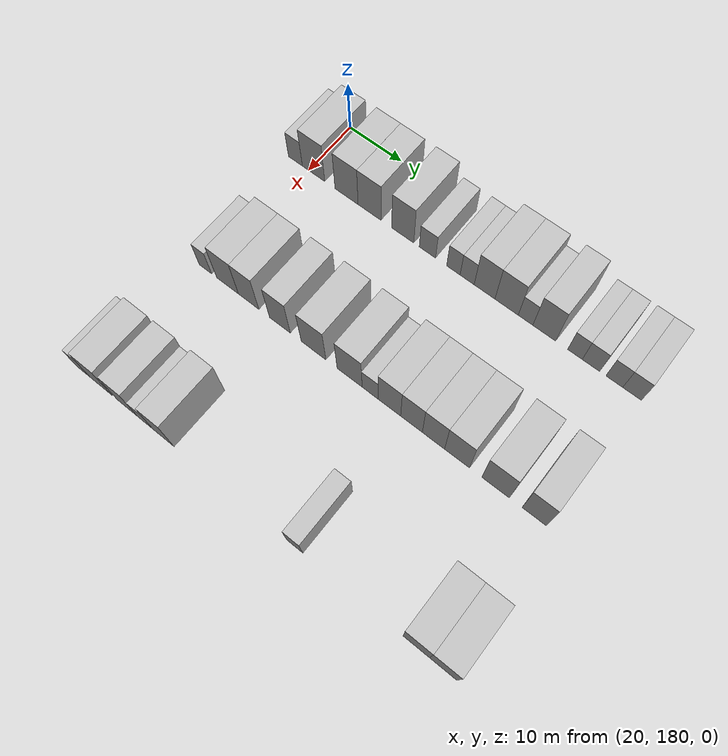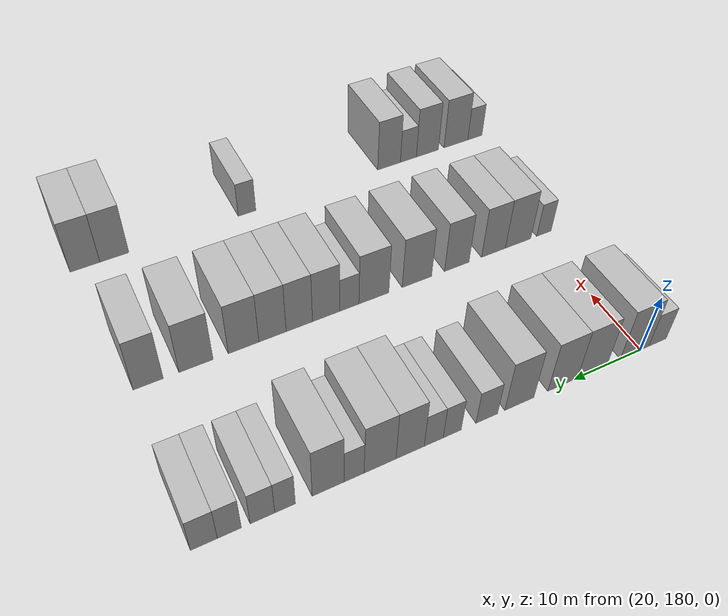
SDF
<sdf version="1.6">
 <world name="default">
  <model name="building_133">
   <static>1</static>
   <pose>25.0000 177.3653 0 0.000000 0.000000 0.000000</pose>
   <link name="link">
    <pose>0 0 3.00 0 0 0</pose>
    <collision name="collision"><geometry><box><size>10.0000 2.7550 6.0000</size></box></geometry></collision>
    <visual name="visual">
     <cast_shadows>0</cast_shadows>
     <geometry><box><size>10.0000 2.7550 6.0000</size></box></geometry>
     <material>
      <script>
       <uri>model://HANNAS_wall/materials/scripts</uri>
       <uri>model://HANNAS_wall/materials/textures</uri>
       <name>vrc/HANNAS_wall</name>
      </script>
     </material>
    </visual>
   </link>
  </model>
  <model name="building_134">
   <static>1</static>
   <pose>25.0000 180.9439 0 0.000000 0.000000 0.000000</pose>
   <link name="link">
    <pose>0 0 4.50 0 0 0</pose>
    <collision name="collision"><geometry><box><size>10.0000 4.4023 9.0000</size></box></geometry></collision>
    <visual name="visual">
     <cast_shadows>0</cast_shadows>
     <geometry><box><size>10.0000 4.4023 9.0000</size></box></geometry>
     <material>
      <script>
       <uri>model://HANNAS_wall/materials/scripts</uri>
       <uri>model://HANNAS_wall/materials/textures</uri>
       <name>vrc/HANNAS_wall</name>
      </script>
     </material>
    </visual>
   </link>
  </model>
  <model name="building_135">
   <static>1</static>
   <pose>25.0000 187.3601 0 0.000000 0.000000 0.000000</pose>
   <link name="link">
    <pose>0 0 4.50 0 0 0</pose>
    <collision name="collision"><geometry><box><size>10.0000 4.4300 9.0000</size></box></geometry></collision>
    <visual name="visual">
     <cast_shadows>0</cast_shadows>
     <geometry><box><size>10.0000 4.4300 9.0000</size></box></geometry>
     <material>
      <script>
       <uri>model://HANNAS_wall/materials/scripts</uri>
       <uri>model://HANNAS_wall/materials/textures</uri>
       <name>vrc/HANNAS_wall</name>
      </script>
     </material>
    </visual>
   </link>
  </model>
  <model name="building_136">
   <static>1</static>
   <pose>25.0000 191.7448 0 0.000000 0.000000 0.000000</pose>
   <link name="link">
    <pose>0 0 4.50 0 0 0</pose>
    <collision name="collision"><geometry><box><size>10.0000 4.3393 9.0000</size></box></geometry></collision>
    <visual name="visual">
     <cast_shadows>0</cast_shadows>
     <geometry><box><size>10.0000 4.3393 9.0000</size></box></geometry>
     <material>
      <script>
       <uri>model://HANNAS_wall/materials/scripts</uri>
       <uri>model://HANNAS_wall/materials/textures</uri>
       <name>vrc/HANNAS_wall</name>
      </script>
     </material>
    </visual>
   </link>
  </model>
  <model name="building_137">
   <static>1</static>
   <pose>25.0000 197.9644 0 0.000000 0.000000 0.000000</pose>
   <link name="link">
    <pose>0 0 4.50 0 0 0</pose>
    <collision name="collision"><geometry><box><size>10.0000 4.0999 9.0000</size></box></geometry></collision>
    <visual name="visual">
     <cast_shadows>0</cast_shadows>
     <geometry><box><size>10.0000 4.0999 9.0000</size></box></geometry>
     <material>
      <script>
       <uri>model://HANNAS_wall/materials/scripts</uri>
       <uri>model://HANNAS_wall/materials/textures</uri>
       <name>vrc/HANNAS_wall</name>
      </script>
     </material>
    </visual>
   </link>
  </model>
  <model name="building_138">
   <static>1</static>
   <pose>25.0000 202.4989 0 0.000000 0.000000 0.000000</pose>
   <link name="link">
    <pose>0 0 3.00 0 0 0</pose>
    <collision name="collision"><geometry><box><size>10.0000 2.9692 6.0000</size></box></geometry></collision>
    <visual name="visual">
     <cast_shadows>0</cast_shadows>
     <geometry><box><size>10.0000 2.9692 6.0000</size></box></geometry>
     <material>
      <script>
       <uri>model://HANNAS_wall/materials/scripts</uri>
       <uri>model://HANNAS_wall/materials/textures</uri>
       <name>vrc/HANNAS_wall</name>
      </script>
     </material>
    </visual>
   </link>
  </model>
  <model name="building_139">
   <static>1</static>
   <pose>25.0000 207.1845 0 0.000000 0.000000 0.000000</pose>
   <link name="link">
    <pose>0 0 3.00 0 0 0</pose>
    <collision name="collision"><geometry><box><size>10.0000 2.4019 6.0000</size></box></geometry></collision>
    <visual name="visual">
     <cast_shadows>0</cast_shadows>
     <geometry><box><size>10.0000 2.4019 6.0000</size></box></geometry>
     <material>
      <script>
       <uri>model://HANNAS_wall/materials/scripts</uri>
       <uri>model://HANNAS_wall/materials/textures</uri>
       <name>vrc/HANNAS_wall</name>
      </script>
     </material>
    </visual>
   </link>
  </model>
  <model name="building_140">
   <static>1</static>
   <pose>25.0000 209.6355 0 0.000000 0.000000 0.000000</pose>
   <link name="link">
    <pose>0 0 3.00 0 0 0</pose>
    <collision name="collision"><geometry><box><size>10.0000 2.5001 6.0000</size></box></geometry></collision>
    <visual name="visual">
     <cast_shadows>0</cast_shadows>
     <geometry><box><size>10.0000 2.5001 6.0000</size></box></geometry>
     <material>
      <script>
       <uri>model://HANNAS_wall/materials/scripts</uri>
       <uri>model://HANNAS_wall/materials/textures</uri>
       <name>vrc/HANNAS_wall</name>
      </script>
     </material>
    </visual>
   </link>
  </model>
  <model name="building_141">
   <static>1</static>
   <pose>25.0000 212.7090 0 0.000000 0.000000 0.000000</pose>
   <link name="link">
    <pose>0 0 4.50 0 0 0</pose>
    <collision name="collision"><geometry><box><size>10.0000 3.6468 9.0000</size></box></geometry></collision>
    <visual name="visual">
     <cast_shadows>0</cast_shadows>
     <geometry><box><size>10.0000 3.6468 9.0000</size></box></geometry>
     <material>
      <script>
       <uri>model://HANNAS_wall/materials/scripts</uri>
       <uri>model://HANNAS_wall/materials/textures</uri>
       <name>vrc/HANNAS_wall</name>
      </script>
     </material>
    </visual>
   </link>
  </model>
  <model name="building_142">
   <static>1</static>
   <pose>25.0000 216.5469 0 0.000000 0.000000 0.000000</pose>
   <link name="link">
    <pose>0 0 4.50 0 0 0</pose>
    <collision name="collision"><geometry><box><size>10.0000 4.0290 9.0000</size></box></geometry></collision>
    <visual name="visual">
     <cast_shadows>0</cast_shadows>
     <geometry><box><size>10.0000 4.0290 9.0000</size></box></geometry>
     <material>
      <script>
       <uri>model://HANNAS_wall/materials/scripts</uri>
       <uri>model://HANNAS_wall/materials/textures</uri>
       <name>vrc/HANNAS_wall</name>
      </script>
     </material>
    </visual>
   </link>
  </model>
  <model name="building_143">
   <static>1</static>
   <pose>25.0000 219.8091 0 0.000000 0.000000 0.000000</pose>
   <link name="link">
    <pose>0 0 3.00 0 0 0</pose>
    <collision name="collision"><geometry><box><size>10.0000 2.4954 6.0000</size></box></geometry></collision>
    <visual name="visual">
     <cast_shadows>0</cast_shadows>
     <geometry><box><size>10.0000 2.4954 6.0000</size></box></geometry>
     <material>
      <script>
       <uri>model://HANNAS_wall/materials/scripts</uri>
       <uri>model://HANNAS_wall/materials/textures</uri>
       <name>vrc/HANNAS_wall</name>
      </script>
     </material>
    </visual>
   </link>
  </model>
  <model name="building_144">
   <static>1</static>
   <pose>25.0000 222.9866 0 0.000000 0.000000 0.000000</pose>
   <link name="link">
    <pose>0 0 4.50 0 0 0</pose>
    <collision name="collision"><geometry><box><size>10.0000 3.8596 9.0000</size></box></geometry></collision>
    <visual name="visual">
     <cast_shadows>0</cast_shadows>
     <geometry><box><size>10.0000 3.8596 9.0000</size></box></geometry>
     <material>
      <script>
       <uri>model://HANNAS_wall/materials/scripts</uri>
       <uri>model://HANNAS_wall/materials/textures</uri>
       <name>vrc/HANNAS_wall</name>
      </script>
     </material>
    </visual>
   </link>
  </model>
  <model name="building_145">
   <static>1</static>
   <pose>25.0000 228.1262 0 0.000000 0.000000 0.000000</pose>
   <link name="link">
    <pose>0 0 3.00 0 0 0</pose>
    <collision name="collision"><geometry><box><size>10.0000 2.4196 6.0000</size></box></geometry></collision>
    <visual name="visual">
     <cast_shadows>0</cast_shadows>
     <geometry><box><size>10.0000 2.4196 6.0000</size></box></geometry>
     <material>
      <script>
       <uri>model://HANNAS_wall/materials/scripts</uri>
       <uri>model://HANNAS_wall/materials/textures</uri>
       <name>vrc/HANNAS_wall</name>
      </script>
     </material>
    </visual>
   </link>
  </model>
  <model name="building_146">
   <static>1</static>
   <pose>25.0000 230.7642 0 0.000000 0.000000 0.000000</pose>
   <link name="link">
    <pose>0 0 3.00 0 0 0</pose>
    <collision name="collision"><geometry><box><size>10.0000 2.8565 6.0000</size></box></geometry></collision>
    <visual name="visual">
     <cast_shadows>0</cast_shadows>
     <geometry><box><size>10.0000 2.8565 6.0000</size></box></geometry>
     <material>
      <script>
       <uri>model://HANNAS_wall/materials/scripts</uri>
       <uri>model://HANNAS_wall/materials/textures</uri>
       <name>vrc/HANNAS_wall</name>
      </script>
     </material>
    </visual>
   </link>
  </model>
  <model name="building_147">
   <static>1</static>
   <pose>25.0000 234.5485 0 0.000000 0.000000 0.000000</pose>
   <link name="link">
    <pose>0 0 3.00 0 0 0</pose>
    <collision name="collision"><geometry><box><size>10.0000 2.7121 6.0000</size></box></geometry></collision>
    <visual name="visual">
     <cast_shadows>0</cast_shadows>
     <geometry><box><size>10.0000 2.7121 6.0000</size></box></geometry>
     <material>
      <script>
       <uri>model://HANNAS_wall/materials/scripts</uri>
       <uri>model://HANNAS_wall/materials/textures</uri>
       <name>vrc/HANNAS_wall</name>
      </script>
     </material>
    </visual>
   </link>
  </model>
  <model name="building_148">
   <static>1</static>
   <pose>25.0000 237.4010 0 0.000000 0.000000 0.000000</pose>
   <link name="link">
    <pose>0 0 3.00 0 0 0</pose>
    <collision name="collision"><geometry><box><size>10.0000 2.9927 6.0000</size></box></geometry></collision>
    <visual name="visual">
     <cast_shadows>0</cast_shadows>
     <geometry><box><size>10.0000 2.9927 6.0000</size></box></geometry>
     <material>
      <script>
       <uri>model://HANNAS_wall/materials/scripts</uri>
       <uri>model://HANNAS_wall/materials/textures</uri>
       <name>vrc/HANNAS_wall</name>
      </script>
     </material>
    </visual>
   </link>
  </model>
  <model name="building_318">
   <static>1</static>
   <pose>47.0000 179.0964 0 0.000000 0.000000 0.000000</pose>
   <link name="link">
    <pose>0 0 3.00 0 0 0</pose>
    <collision name="collision"><geometry><box><size>10.0000 2.4077 6.0000</size></box></geometry></collision>
    <visual name="visual">
     <cast_shadows>0</cast_shadows>
     <geometry><box><size>10.0000 2.4077 6.0000</size></box></geometry>
     <material>
      <script>
       <uri>model://HANNAS_wall/materials/scripts</uri>
       <uri>model://HANNAS_wall/materials/textures</uri>
       <name>vrc/HANNAS_wall</name>
      </script>
     </material>
    </visual>
   </link>
  </model>
  <model name="building_319">
   <static>1</static>
   <pose>47.0000 183.3885 0 0.000000 0.000000 0.000000</pose>
   <link name="link">
    <pose>0 0 4.50 0 0 0</pose>
    <collision name="collision"><geometry><box><size>10.0000 4.1765 9.0000</size></box></geometry></collision>
    <visual name="visual">
     <cast_shadows>0</cast_shadows>
     <geometry><box><size>10.0000 4.1765 9.0000</size></box></geometry>
     <material>
      <script>
       <uri>model://HANNAS_wall/materials/scripts</uri>
       <uri>model://HANNAS_wall/materials/textures</uri>
       <name>vrc/HANNAS_wall</name>
      </script>
     </material>
    </visual>
   </link>
  </model>
  <model name="building_320">
   <static>1</static>
   <pose>47.0000 187.4040 0 0.000000 0.000000 0.000000</pose>
   <link name="link">
    <pose>0 0 4.50 0 0 0</pose>
    <collision name="collision"><geometry><box><size>10.0000 3.8545 9.0000</size></box></geometry></collision>
    <visual name="visual">
     <cast_shadows>0</cast_shadows>
     <geometry><box><size>10.0000 3.8545 9.0000</size></box></geometry>
     <material>
      <script>
       <uri>model://HANNAS_wall/materials/scripts</uri>
       <uri>model://HANNAS_wall/materials/textures</uri>
       <name>vrc/HANNAS_wall</name>
      </script>
     </material>
    </visual>
   </link>
  </model>
  <model name="building_321">
   <static>1</static>
   <pose>47.0000 193.2502 0 0.000000 0.000000 0.000000</pose>
   <link name="link">
    <pose>0 0 4.50 0 0 0</pose>
    <collision name="collision"><geometry><box><size>10.0000 3.8380 9.0000</size></box></geometry></collision>
    <visual name="visual">
     <cast_shadows>0</cast_shadows>
     <geometry><box><size>10.0000 3.8380 9.0000</size></box></geometry>
     <material>
      <script>
       <uri>model://HANNAS_wall/materials/scripts</uri>
       <uri>model://HANNAS_wall/materials/textures</uri>
       <name>vrc/HANNAS_wall</name>
      </script>
     </material>
    </visual>
   </link>
  </model>
  <model name="building_322">
   <static>1</static>
   <pose>47.0000 199.4006 0 0.000000 0.000000 0.000000</pose>
   <link name="link">
    <pose>0 0 4.50 0 0 0</pose>
    <collision name="collision"><geometry><box><size>10.0000 4.4628 9.0000</size></box></geometry></collision>
    <visual name="visual">
     <cast_shadows>0</cast_shadows>
     <geometry><box><size>10.0000 4.4628 9.0000</size></box></geometry>
     <material>
      <script>
       <uri>model://HANNAS_wall/materials/scripts</uri>
       <uri>model://HANNAS_wall/materials/textures</uri>
       <name>vrc/HANNAS_wall</name>
      </script>
     </material>
    </visual>
   </link>
  </model>
  <model name="building_323">
   <static>1</static>
   <pose>47.0000 205.8380 0 0.000000 0.000000 0.000000</pose>
   <link name="link">
    <pose>0 0 4.50 0 0 0</pose>
    <collision name="collision"><geometry><box><size>10.0000 4.4119 9.0000</size></box></geometry></collision>
    <visual name="visual">
     <cast_shadows>0</cast_shadows>
     <geometry><box><size>10.0000 4.4119 9.0000</size></box></geometry>
     <material>
      <script>
       <uri>model://HANNAS_wall/materials/scripts</uri>
       <uri>model://HANNAS_wall/materials/textures</uri>
       <name>vrc/HANNAS_wall</name>
      </script>
     </material>
    </visual>
   </link>
  </model>
  <model name="building_324">
   <static>1</static>
   <pose>47.0000 209.4214 0 0.000000 0.000000 0.000000</pose>
   <link name="link">
    <pose>0 0 3.00 0 0 0</pose>
    <collision name="collision"><geometry><box><size>10.0000 2.7551 6.0000</size></box></geometry></collision>
    <visual name="visual">
     <cast_shadows>0</cast_shadows>
     <geometry><box><size>10.0000 2.7551 6.0000</size></box></geometry>
     <material>
      <script>
       <uri>model://HANNAS_wall/materials/scripts</uri>
       <uri>model://HANNAS_wall/materials/textures</uri>
       <name>vrc/HANNAS_wall</name>
      </script>
     </material>
    </visual>
   </link>
  </model>
  <model name="building_325">
   <static>1</static>
   <pose>47.0000 212.7383 0 0.000000 0.000000 0.000000</pose>
   <link name="link">
    <pose>0 0 4.50 0 0 0</pose>
    <collision name="collision"><geometry><box><size>10.0000 3.8786 9.0000</size></box></geometry></collision>
    <visual name="visual">
     <cast_shadows>0</cast_shadows>
     <geometry><box><size>10.0000 3.8786 9.0000</size></box></geometry>
     <material>
      <script>
       <uri>model://HANNAS_wall/materials/scripts</uri>
       <uri>model://HANNAS_wall/materials/textures</uri>
       <name>vrc/HANNAS_wall</name>
      </script>
     </material>
    </visual>
   </link>
  </model>
  <model name="building_326">
   <static>1</static>
   <pose>47.0000 216.5075 0 0.000000 0.000000 0.000000</pose>
   <link name="link">
    <pose>0 0 4.50 0 0 0</pose>
    <collision name="collision"><geometry><box><size>10.0000 3.6599 9.0000</size></box></geometry></collision>
    <visual name="visual">
     <cast_shadows>0</cast_shadows>
     <geometry><box><size>10.0000 3.6599 9.0000</size></box></geometry>
     <material>
      <script>
       <uri>model://HANNAS_wall/materials/scripts</uri>
       <uri>model://HANNAS_wall/materials/textures</uri>
       <name>vrc/HANNAS_wall</name>
      </script>
     </material>
    </visual>
   </link>
  </model>
  <model name="building_327">
   <static>1</static>
   <pose>47.0000 220.1936 0 0.000000 0.000000 0.000000</pose>
   <link name="link">
    <pose>0 0 4.50 0 0 0</pose>
    <collision name="collision"><geometry><box><size>10.0000 3.7123 9.0000</size></box></geometry></collision>
    <visual name="visual">
     <cast_shadows>0</cast_shadows>
     <geometry><box><size>10.0000 3.7123 9.0000</size></box></geometry>
     <material>
      <script>
       <uri>model://HANNAS_wall/materials/scripts</uri>
       <uri>model://HANNAS_wall/materials/textures</uri>
       <name>vrc/HANNAS_wall</name>
      </script>
     </material>
    </visual>
   </link>
  </model>
  <model name="building_328">
   <static>1</static>
   <pose>47.0000 224.0951 0 0.000000 0.000000 0.000000</pose>
   <link name="link">
    <pose>0 0 4.50 0 0 0</pose>
    <collision name="collision"><geometry><box><size>10.0000 4.0907 9.0000</size></box></geometry></collision>
    <visual name="visual">
     <cast_shadows>0</cast_shadows>
     <geometry><box><size>10.0000 4.0907 9.0000</size></box></geometry>
     <material>
      <script>
       <uri>model://HANNAS_wall/materials/scripts</uri>
       <uri>model://HANNAS_wall/materials/textures</uri>
       <name>vrc/HANNAS_wall</name>
      </script>
     </material>
    </visual>
   </link>
  </model>
  <model name="building_329">
   <static>1</static>
   <pose>47.0000 230.3417 0 0.000000 0.000000 0.000000</pose>
   <link name="link">
    <pose>0 0 4.50 0 0 0</pose>
    <collision name="collision"><geometry><box><size>10.0000 4.4025 9.0000</size></box></geometry></collision>
    <visual name="visual">
     <cast_shadows>0</cast_shadows>
     <geometry><box><size>10.0000 4.4025 9.0000</size></box></geometry>
     <material>
      <script>
       <uri>model://HANNAS_wall/materials/scripts</uri>
       <uri>model://HANNAS_wall/materials/textures</uri>
       <name>vrc/HANNAS_wall</name>
      </script>
     </material>
    </visual>
   </link>
  </model>
  <model name="building_330">
   <static>1</static>
   <pose>47.0000 236.4284 0 0.000000 0.000000 0.000000</pose>
   <link name="link">
    <pose>0 0 4.50 0 0 0</pose>
    <collision name="collision"><geometry><box><size>10.0000 3.7709 9.0000</size></box></geometry></collision>
    <visual name="visual">
     <cast_shadows>0</cast_shadows>
     <geometry><box><size>10.0000 3.7709 9.0000</size></box></geometry>
     <material>
      <script>
       <uri>model://HANNAS_wall/materials/scripts</uri>
       <uri>model://HANNAS_wall/materials/textures</uri>
       <name>vrc/HANNAS_wall</name>
      </script>
     </material>
    </visual>
   </link>
  </model>
  <model name="building_509">
   <static>1</static>
   <pose>69.0000 176.6699 0 0.000000 0.000000 0.000000</pose>
   <link name="link">
    <pose>0 0 3.00 0 0 0</pose>
    <collision name="collision"><geometry><box><size>10.0000 2.5866 6.0000</size></box></geometry></collision>
    <visual name="visual">
     <cast_shadows>0</cast_shadows>
     <geometry><box><size>10.0000 2.5866 6.0000</size></box></geometry>
     <material>
      <script>
       <uri>model://HANNAS_wall/materials/scripts</uri>
       <uri>model://HANNAS_wall/materials/textures</uri>
       <name>vrc/HANNAS_wall</name>
      </script>
     </material>
    </visual>
   </link>
  </model>
  <model name="building_510">
   <static>1</static>
   <pose>69.0000 180.0949 0 0.000000 0.000000 0.000000</pose>
   <link name="link">
    <pose>0 0 4.50 0 0 0</pose>
    <collision name="collision"><geometry><box><size>10.0000 4.2635 9.0000</size></box></geometry></collision>
    <visual name="visual">
     <cast_shadows>0</cast_shadows>
     <geometry><box><size>10.0000 4.2635 9.0000</size></box></geometry>
     <material>
      <script>
       <uri>model://HANNAS_wall/materials/scripts</uri>
       <uri>model://HANNAS_wall/materials/textures</uri>
       <name>vrc/HANNAS_wall</name>
      </script>
     </material>
    </visual>
   </link>
  </model>
  <model name="building_511">
   <static>1</static>
   <pose>69.0000 185.1601 0 0.000000 0.000000 0.000000</pose>
   <link name="link">
    <pose>0 0 4.50 0 0 0</pose>
    <collision name="collision"><geometry><box><size>10.0000 3.8669 9.0000</size></box></geometry></collision>
    <visual name="visual">
     <cast_shadows>0</cast_shadows>
     <geometry><box><size>10.0000 3.8669 9.0000</size></box></geometry>
     <material>
      <script>
       <uri>model://HANNAS_wall/materials/scripts</uri>
       <uri>model://HANNAS_wall/materials/textures</uri>
       <name>vrc/HANNAS_wall</name>
      </script>
     </material>
    </visual>
   </link>
  </model>
  <model name="building_512">
   <static>1</static>
   <pose>69.0000 188.4677 0 0.000000 0.000000 0.000000</pose>
   <link name="link">
    <pose>0 0 3.00 0 0 0</pose>
    <collision name="collision"><geometry><box><size>10.0000 2.7484 6.0000</size></box></geometry></collision>
    <visual name="visual">
     <cast_shadows>0</cast_shadows>
     <geometry><box><size>10.0000 2.7484 6.0000</size></box></geometry>
     <material>
      <script>
       <uri>model://HANNAS_wall/materials/scripts</uri>
       <uri>model://HANNAS_wall/materials/textures</uri>
       <name>vrc/HANNAS_wall</name>
      </script>
     </material>
    </visual>
   </link>
  </model>
  <model name="building_513">
   <static>1</static>
   <pose>69.0000 191.7796 0 0.000000 0.000000 0.000000</pose>
   <link name="link">
    <pose>0 0 4.50 0 0 0</pose>
    <collision name="collision"><geometry><box><size>10.0000 3.8753 9.0000</size></box></geometry></collision>
    <visual name="visual">
     <cast_shadows>0</cast_shadows>
     <geometry><box><size>10.0000 3.8753 9.0000</size></box></geometry>
     <material>
      <script>
       <uri>model://HANNAS_wall/materials/scripts</uri>
       <uri>model://HANNAS_wall/materials/textures</uri>
       <name>vrc/HANNAS_wall</name>
      </script>
     </material>
    </visual>
   </link>
  </model>
  <model name="building_514">
   <static>1</static>
   <pose>69.0000 214.7545 0 0.000000 0.000000 0.000000</pose>
   <link name="link">
    <pose>0 0 3.00 0 0 0</pose>
    <collision name="collision"><geometry><box><size>10.0000 2.6915 6.0000</size></box></geometry></collision>
    <visual name="visual">
     <cast_shadows>0</cast_shadows>
     <geometry><box><size>10.0000 2.6915 6.0000</size></box></geometry>
     <material>
      <script>
       <uri>model://HANNAS_wall/materials/scripts</uri>
       <uri>model://HANNAS_wall/materials/textures</uri>
       <name>vrc/HANNAS_wall</name>
      </script>
     </material>
    </visual>
   </link>
  </model>
  <model name="building_515">
   <static>1</static>
   <pose>69.0000 234.1579 0 0.000000 0.000000 0.000000</pose>
   <link name="link">
    <pose>0 0 4.50 0 0 0</pose>
    <collision name="collision"><geometry><box><size>10.0000 4.0385 9.0000</size></box></geometry></collision>
    <visual name="visual">
     <cast_shadows>0</cast_shadows>
     <geometry><box><size>10.0000 4.0385 9.0000</size></box></geometry>
     <material>
      <script>
       <uri>model://HANNAS_wall/materials/scripts</uri>
       <uri>model://HANNAS_wall/materials/textures</uri>
       <name>vrc/HANNAS_wall</name>
      </script>
     </material>
    </visual>
   </link>
  </model>
  <model name="building_516">
   <static>1</static>
   <pose>69.0000 238.2220 0 0.000000 0.000000 0.000000</pose>
   <link name="link">
    <pose>0 0 4.50 0 0 0</pose>
    <collision name="collision"><geometry><box><size>10.0000 4.0897 9.0000</size></box></geometry></collision>
    <visual name="visual">
     <cast_shadows>0</cast_shadows>
     <geometry><box><size>10.0000 4.0897 9.0000</size></box></geometry>
     <material>
      <script>
       <uri>model://HANNAS_wall/materials/scripts</uri>
       <uri>model://HANNAS_wall/materials/textures</uri>
       <name>vrc/HANNAS_wall</name>
      </script>
     </material>
    </visual>
   </link>
  </model>
 </world>
</sdf>
